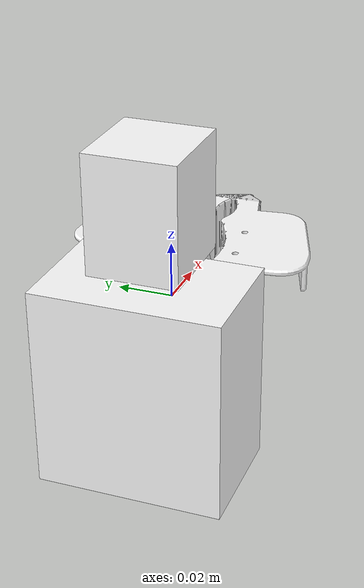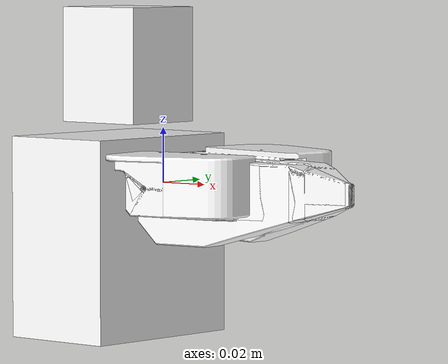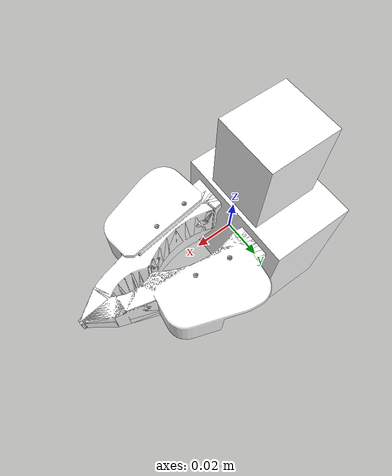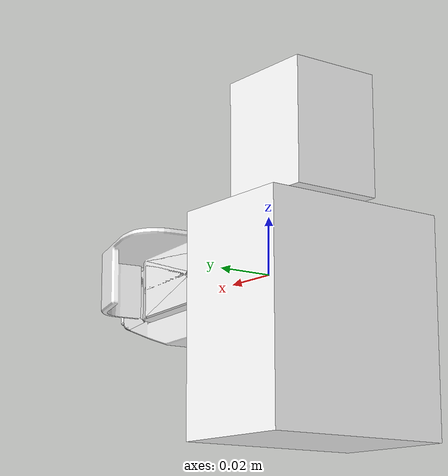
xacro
<?xml version="1.0"?>
<robot xmlns:xacro="http://www.ros.org/wiki/xacro" name="yubi_hands">
  <xacro:property name="palm_size" value="0.044 0.067 0.0735"/>
  <xacro:property name="finger_mesh_dir" value="package://yubi_description/meshes"/>
  <xacro:property name="finger_lower_limit" value="0.00"/>
  <xacro:property name="finger_upper_limit" value="0.94"/>
  <xacro:property name="finger_offset_y" value="0.015"/>
  <xacro:property name="finger_tip_offset_y" value="-0.014"/>
  <xacro:property name="finger_tip_offset_x" value="0.10943"/>

  <material name="yubi_gray">
    <color rgba="1.0 1.0 1.0 1"/>
  </material>

  <xacro:macro name="yubi_hand" params="hand_prefix">
    <link name="${hand_prefix}_hand_root">
      <visual>
        <origin xyz="-0.022 0 -0.02015" rpy="0 0 0"/>
        <geometry>
          <box size="${palm_size}"/>
        </geometry>
        <material name="yubi_gray"/>
      </visual>
      <collision>
        <origin xyz="-0.022 0 -0.02015" rpy="0 0 0"/>
        <geometry>
          <box size="${palm_size}"/>
        </geometry>
      </collision>
    </link>

    <joint name="${hand_prefix}_camera_joint" type="fixed">
      <origin xyz="0 0 0.0426" rpy="0 0 0"/>
      <parent link="${hand_prefix}_hand_root"/>
      <child link="${hand_prefix}_hand_cam_link"/>
    </joint>

    <link name="${hand_prefix}_hand_cam_link">
      <visual>
        <origin xyz="-0.0175 0 0" rpy="0 0 0"/>
        <geometry>
          <box size="0.035 0.032 0.042"/>
        </geometry>
        <material name="yubi_gray"/>
      </visual>
      <collision>
        <origin xyz="-0.0175 0 0" rpy="0 0 0"/>
        <geometry>
          <box size="0.035 0.032 0.042"/>
        </geometry>
      </collision>
    </link>

    <joint name="${hand_prefix}_camera_optical_joint" type="fixed">
      <origin xyz="0 0 0" rpy="0 0 0"/>
      <parent link="${hand_prefix}_hand_cam_link"/>
      <child link="${hand_prefix}_hand_cam_optical"/>
    </joint>

    <link name="${hand_prefix}_hand_cam_optical" data-frame-convention="camera_optical"/>

    <!-- Primary finger (driven directly by encoder) -->
    <joint name="${hand_prefix}_right_finger_joint" type="revolute">
      <origin xyz="-0.016 ${-finger_offset_y} 0" rpy="0 0 0"/>
      <parent link="${hand_prefix}_hand_root"/>
      <child link="${hand_prefix}_right_finger_link"/>
      <axis xyz="0 0 -1"/>
      <limit lower="${finger_lower_limit}" upper="${finger_upper_limit}" effort="5" velocity="2"/>
    </joint>

    <link name="${hand_prefix}_right_finger_link">
      <visual>
        <origin xyz="0 0 0" rpy="0 0 0"/>
        <geometry>
          <mesh filename="${finger_mesh_dir}/hand_${hand_prefix}_right_finger_link.STL"/>
        </geometry>
        <material name="yubi_gray"/>
      </visual>
      <collision>
        <origin xyz="0 0 0" rpy="0 0 0"/>
        <geometry>
          <mesh filename="${finger_mesh_dir}/hand_${hand_prefix}_right_finger_link_col.STL"/>
        </geometry>
      </collision>
    </link>

    <joint name="${hand_prefix}_right_finger_tip_joint" type="fixed">
      <origin xyz="${finger_tip_offset_x} ${finger_tip_offset_y} 0" rpy="0 0 0"/>
      <parent link="${hand_prefix}_right_finger_link"/>
      <child link="${hand_prefix}_right_finger_tip_link"/>
    </joint>

    <link name="${hand_prefix}_right_finger_tip_link">
    </link>

    <!-- Mirror finger (mimic joint, inverse motion) -->
    <joint name="${hand_prefix}_left_finger_joint" type="revolute">
      <origin xyz="-0.016 ${finger_offset_y} 0" rpy="0 0 0"/>
      <parent link="${hand_prefix}_hand_root"/>
      <child link="${hand_prefix}_left_finger_link"/>
      <axis xyz="0 0 -1"/>
      <limit lower="${-finger_upper_limit}" upper="${-finger_lower_limit}" effort="5" velocity="2"/>
      <mimic joint="${hand_prefix}_right_finger_joint" multiplier="-1" offset="0"/>
    </joint>

    <link name="${hand_prefix}_left_finger_link">
      <visual>
        <origin xyz="0 0 0" rpy="0 0 0"/>
        <geometry>
          <mesh filename="${finger_mesh_dir}/hand_${hand_prefix}_left_finger_link.STL"/>
        </geometry>
        <material name="yubi_gray"/>
      </visual>
      <collision>
        <origin xyz="0 0 0" rpy="0 0 0"/>
        <geometry>
          <mesh filename="${finger_mesh_dir}/hand_${hand_prefix}_left_finger_link_col.STL"/>
        </geometry>
      </collision>
    </link>

    <joint name="${hand_prefix}_left_finger_tip_joint" type="fixed">
      <origin xyz="${finger_tip_offset_x} ${-finger_tip_offset_y} 0" rpy="0 0 0"/>
      <parent link="${hand_prefix}_left_finger_link"/>
      <child link="${hand_prefix}_left_finger_tip_link"/>
    </joint>

    <link name="${hand_prefix}_left_finger_tip_link">
    </link>
  </xacro:macro>

  <link name="quest_origin"/>
  <link name="quest_right_controller"/>
  <link name="quest_left_controller"/>

  <xacro:yubi_hand hand_prefix="right"/>
  <xacro:yubi_hand hand_prefix="left"/>

  <joint name="quest_origin_to_left" type="floating">
    <origin xyz="0 0 0" rpy="0 0 0"/>
    <parent link="quest_origin"/>
    <child link="left_hand_root"/>
  </joint>

  <joint name="quest_origin_to_right" type="floating">
    <origin xyz="0 0 0" rpy="0 0 0"/>
    <parent link="quest_origin"/>
    <child link="right_hand_root"/>
  </joint>

  <joint name="right_mount_joint" type="fixed">
    <origin xyz="-0.063 -0.016 0.0525"
            rpy="0 ${radians(-45)} ${radians(-45)}"/>
    <parent link="right_hand_root"/>
    <child link="quest_right_controller"/>
  </joint>

  <joint name="left_mount_joint" type="fixed">
    <origin xyz="-0.063 0.016 0.0525"
            rpy="0 ${radians(-45)} ${radians(45)}"/>
    <parent link="left_hand_root"/>
    <child link="quest_left_controller"/>
  </joint>

</robot>
